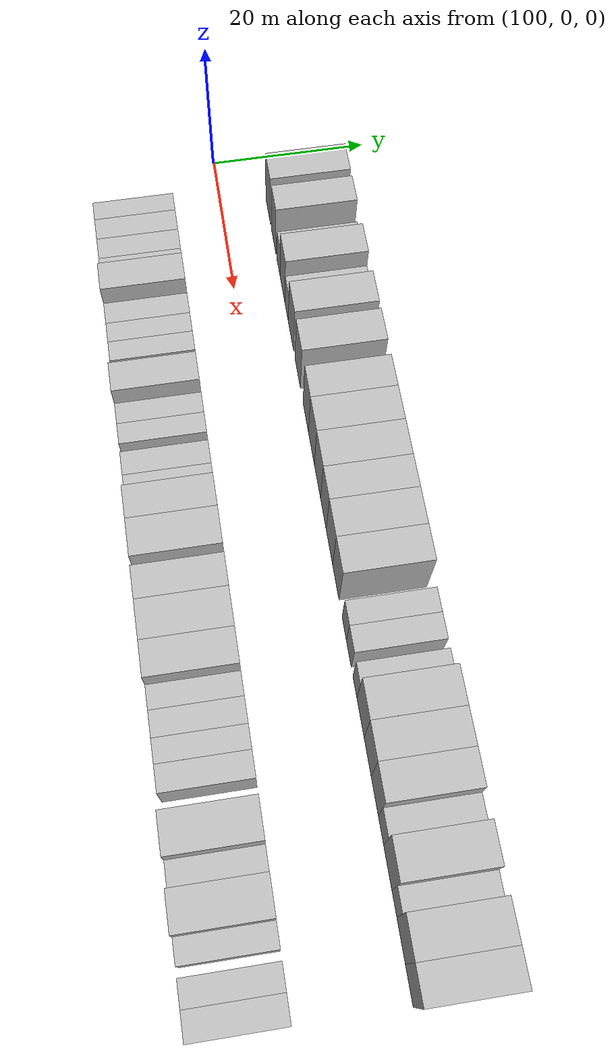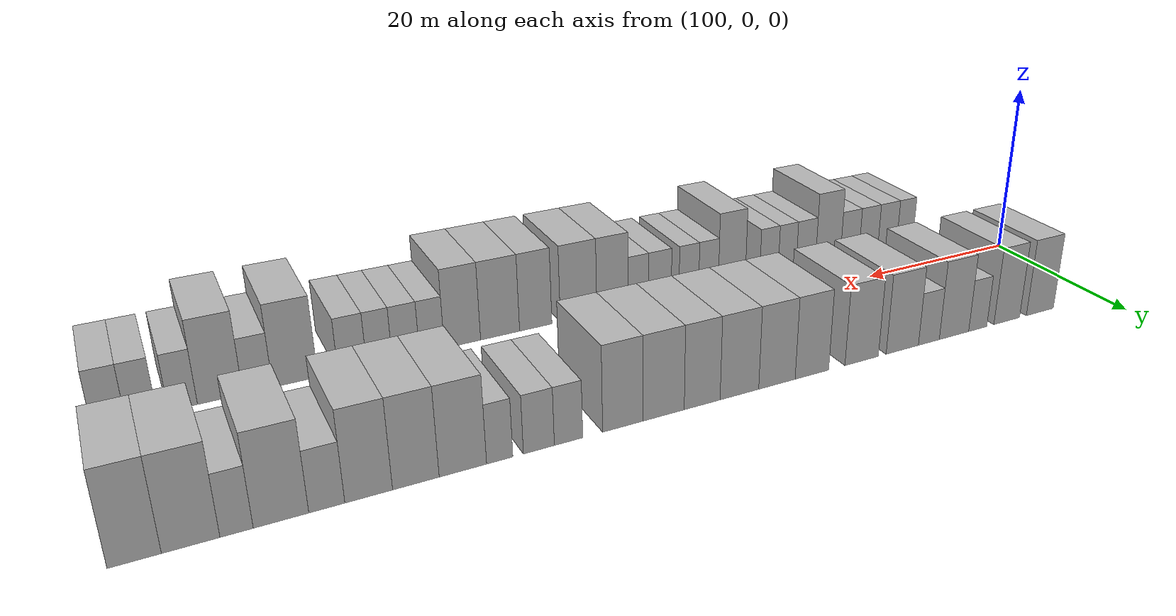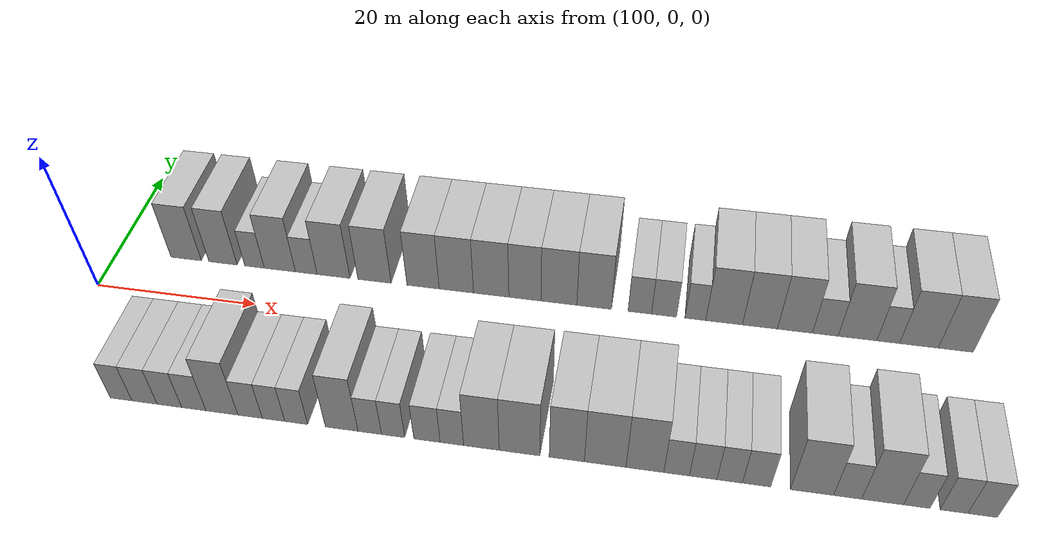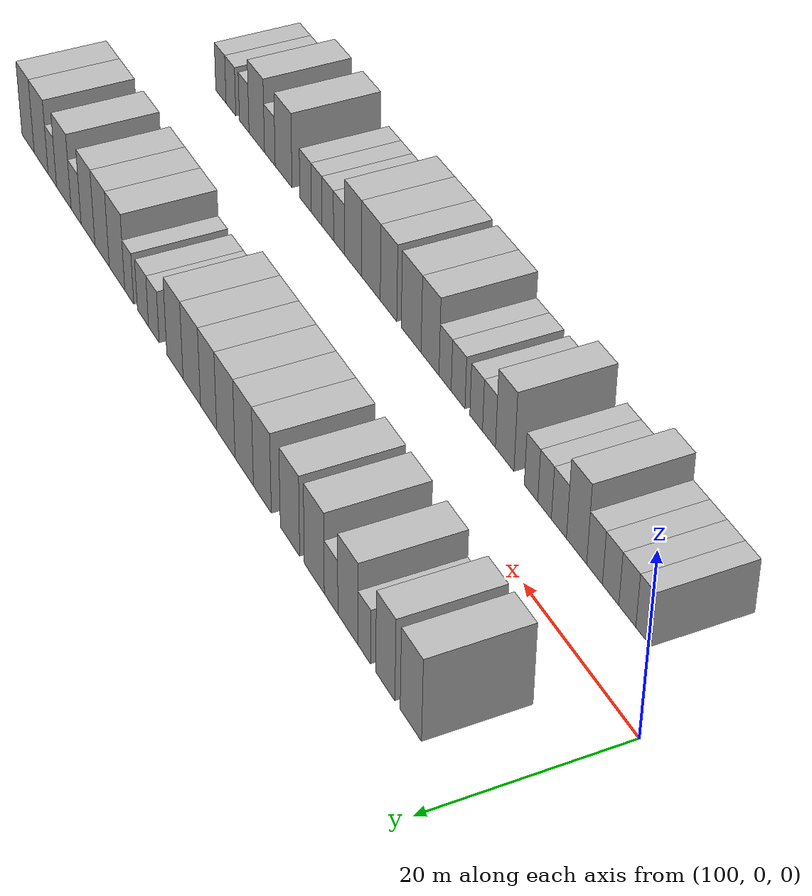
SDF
<sdf version="1.6">
 <world name="default">
  <model name="building_26">
   <static>1</static>
   <pose>108.9048 11.0000 0 0.000000 0.000000 1.570796</pose>
   <link name="link">
    <pose>0 0 4.50 0 0 0</pose>
    <collision name="collision"><geometry><box><size>10.0000 3.9780 9.0000</size></box></geometry></collision>
    <visual name="visual">
     <cast_shadows>0</cast_shadows>
     <geometry><box><size>10.0000 3.9780 9.0000</size></box></geometry>
     <material>
      <script>
       <uri>model://HANNAS_wall/materials/scripts</uri>
       <uri>model://HANNAS_wall/materials/textures</uri>
       <name>vrc/HANNAS_wall</name>
      </script>
     </material>
    </visual>
   </link>
  </model>
  <model name="building_27">
   <static>1</static>
   <pose>113.7349 11.0000 0 0.000000 0.000000 1.570796</pose>
   <link name="link">
    <pose>0 0 4.50 0 0 0</pose>
    <collision name="collision"><geometry><box><size>10.0000 3.6821 9.0000</size></box></geometry></collision>
    <visual name="visual">
     <cast_shadows>0</cast_shadows>
     <geometry><box><size>10.0000 3.6821 9.0000</size></box></geometry>
     <material>
      <script>
       <uri>model://HANNAS_wall/materials/scripts</uri>
       <uri>model://HANNAS_wall/materials/textures</uri>
       <name>vrc/HANNAS_wall</name>
      </script>
     </material>
    </visual>
   </link>
  </model>
  <model name="building_28">
   <static>1</static>
   <pose>117.8396 11.0000 0 0.000000 0.000000 1.570796</pose>
   <link name="link">
    <pose>0 0 3.00 0 0 0</pose>
    <collision name="collision"><geometry><box><size>10.0000 2.5272 6.0000</size></box></geometry></collision>
    <visual name="visual">
     <cast_shadows>0</cast_shadows>
     <geometry><box><size>10.0000 2.5272 6.0000</size></box></geometry>
     <material>
      <script>
       <uri>model://HANNAS_wall/materials/scripts</uri>
       <uri>model://HANNAS_wall/materials/textures</uri>
       <name>vrc/HANNAS_wall</name>
      </script>
     </material>
    </visual>
   </link>
  </model>
  <model name="building_29">
   <static>1</static>
   <pose>121.1098 11.0000 0 0.000000 0.000000 1.570796</pose>
   <link name="link">
    <pose>0 0 4.50 0 0 0</pose>
    <collision name="collision"><geometry><box><size>10.0000 4.0132 9.0000</size></box></geometry></collision>
    <visual name="visual">
     <cast_shadows>0</cast_shadows>
     <geometry><box><size>10.0000 4.0132 9.0000</size></box></geometry>
     <material>
      <script>
       <uri>model://HANNAS_wall/materials/scripts</uri>
       <uri>model://HANNAS_wall/materials/textures</uri>
       <name>vrc/HANNAS_wall</name>
      </script>
     </material>
    </visual>
   </link>
  </model>
  <model name="building_30">
   <static>1</static>
   <pose>124.5116 11.0000 0 0.000000 0.000000 1.570796</pose>
   <link name="link">
    <pose>0 0 3.00 0 0 0</pose>
    <collision name="collision"><geometry><box><size>10.0000 2.7904 6.0000</size></box></geometry></collision>
    <visual name="visual">
     <cast_shadows>0</cast_shadows>
     <geometry><box><size>10.0000 2.7904 6.0000</size></box></geometry>
     <material>
      <script>
       <uri>model://HANNAS_wall/materials/scripts</uri>
       <uri>model://HANNAS_wall/materials/textures</uri>
       <name>vrc/HANNAS_wall</name>
      </script>
     </material>
    </visual>
   </link>
  </model>
  <model name="building_31">
   <static>1</static>
   <pose>128.0067 11.0000 0 0.000000 0.000000 1.570796</pose>
   <link name="link">
    <pose>0 0 4.50 0 0 0</pose>
    <collision name="collision"><geometry><box><size>10.0000 4.1998 9.0000</size></box></geometry></collision>
    <visual name="visual">
     <cast_shadows>0</cast_shadows>
     <geometry><box><size>10.0000 4.1998 9.0000</size></box></geometry>
     <material>
      <script>
       <uri>model://HANNAS_wall/materials/scripts</uri>
       <uri>model://HANNAS_wall/materials/textures</uri>
       <name>vrc/HANNAS_wall</name>
      </script>
     </material>
    </visual>
   </link>
  </model>
  <model name="building_32">
   <static>1</static>
   <pose>133.2052 11.0000 0 0.000000 0.000000 1.570796</pose>
   <link name="link">
    <pose>0 0 4.50 0 0 0</pose>
    <collision name="collision"><geometry><box><size>10.0000 4.1973 9.0000</size></box></geometry></collision>
    <visual name="visual">
     <cast_shadows>0</cast_shadows>
     <geometry><box><size>10.0000 4.1973 9.0000</size></box></geometry>
     <material>
      <script>
       <uri>model://HANNAS_wall/materials/scripts</uri>
       <uri>model://HANNAS_wall/materials/textures</uri>
       <name>vrc/HANNAS_wall</name>
      </script>
     </material>
    </visual>
   </link>
  </model>
  <model name="building_33">
   <static>1</static>
   <pose>139.3201 11.0000 0 0.000000 0.000000 1.570796</pose>
   <link name="link">
    <pose>0 0 4.50 0 0 0</pose>
    <collision name="collision"><geometry><box><size>10.0000 4.0323 9.0000</size></box></geometry></collision>
    <visual name="visual">
     <cast_shadows>0</cast_shadows>
     <geometry><box><size>10.0000 4.0323 9.0000</size></box></geometry>
     <material>
      <script>
       <uri>model://HANNAS_wall/materials/scripts</uri>
       <uri>model://HANNAS_wall/materials/textures</uri>
       <name>vrc/HANNAS_wall</name>
      </script>
     </material>
    </visual>
   </link>
  </model>
  <model name="building_34">
   <static>1</static>
   <pose>143.4640 11.0000 0 0.000000 0.000000 1.570796</pose>
   <link name="link">
    <pose>0 0 4.50 0 0 0</pose>
    <collision name="collision"><geometry><box><size>10.0000 4.2556 9.0000</size></box></geometry></collision>
    <visual name="visual">
     <cast_shadows>0</cast_shadows>
     <geometry><box><size>10.0000 4.2556 9.0000</size></box></geometry>
     <material>
      <script>
       <uri>model://HANNAS_wall/materials/scripts</uri>
       <uri>model://HANNAS_wall/materials/textures</uri>
       <name>vrc/HANNAS_wall</name>
      </script>
     </material>
    </visual>
   </link>
  </model>
  <model name="building_35">
   <static>1</static>
   <pose>147.7761 11.0000 0 0.000000 0.000000 1.570796</pose>
   <link name="link">
    <pose>0 0 4.50 0 0 0</pose>
    <collision name="collision"><geometry><box><size>10.0000 4.3686 9.0000</size></box></geometry></collision>
    <visual name="visual">
     <cast_shadows>0</cast_shadows>
     <geometry><box><size>10.0000 4.3686 9.0000</size></box></geometry>
     <material>
      <script>
       <uri>model://HANNAS_wall/materials/scripts</uri>
       <uri>model://HANNAS_wall/materials/textures</uri>
       <name>vrc/HANNAS_wall</name>
      </script>
     </material>
    </visual>
   </link>
  </model>
  <model name="building_36">
   <static>1</static>
   <pose>151.9276 11.0000 0 0.000000 0.000000 1.570796</pose>
   <link name="link">
    <pose>0 0 4.50 0 0 0</pose>
    <collision name="collision"><geometry><box><size>10.0000 3.9345 9.0000</size></box></geometry></collision>
    <visual name="visual">
     <cast_shadows>0</cast_shadows>
     <geometry><box><size>10.0000 3.9345 9.0000</size></box></geometry>
     <material>
      <script>
       <uri>model://HANNAS_wall/materials/scripts</uri>
       <uri>model://HANNAS_wall/materials/textures</uri>
       <name>vrc/HANNAS_wall</name>
      </script>
     </material>
    </visual>
   </link>
  </model>
  <model name="building_37">
   <static>1</static>
   <pose>156.0718 11.0000 0 0.000000 0.000000 1.570796</pose>
   <link name="link">
    <pose>0 0 4.50 0 0 0</pose>
    <collision name="collision"><geometry><box><size>10.0000 4.3540 9.0000</size></box></geometry></collision>
    <visual name="visual">
     <cast_shadows>0</cast_shadows>
     <geometry><box><size>10.0000 4.3540 9.0000</size></box></geometry>
     <material>
      <script>
       <uri>model://HANNAS_wall/materials/scripts</uri>
       <uri>model://HANNAS_wall/materials/textures</uri>
       <name>vrc/HANNAS_wall</name>
      </script>
     </material>
    </visual>
   </link>
  </model>
  <model name="building_38">
   <static>1</static>
   <pose>160.3389 11.0000 0 0.000000 0.000000 1.570796</pose>
   <link name="link">
    <pose>0 0 4.50 0 0 0</pose>
    <collision name="collision"><geometry><box><size>10.0000 4.1802 9.0000</size></box></geometry></collision>
    <visual name="visual">
     <cast_shadows>0</cast_shadows>
     <geometry><box><size>10.0000 4.1802 9.0000</size></box></geometry>
     <material>
      <script>
       <uri>model://HANNAS_wall/materials/scripts</uri>
       <uri>model://HANNAS_wall/materials/textures</uri>
       <name>vrc/HANNAS_wall</name>
      </script>
     </material>
    </visual>
   </link>
  </model>
  <model name="building_39">
   <static>1</static>
   <pose>165.8257 11.0000 0 0.000000 0.000000 1.570796</pose>
   <link name="link">
    <pose>0 0 3.00 0 0 0</pose>
    <collision name="collision"><geometry><box><size>10.0000 2.7934 6.0000</size></box></geometry></collision>
    <visual name="visual">
     <cast_shadows>0</cast_shadows>
     <geometry><box><size>10.0000 2.7934 6.0000</size></box></geometry>
     <material>
      <script>
       <uri>model://HANNAS_wall/materials/scripts</uri>
       <uri>model://HANNAS_wall/materials/textures</uri>
       <name>vrc/HANNAS_wall</name>
      </script>
     </material>
    </visual>
   </link>
  </model>
  <model name="building_40">
   <static>1</static>
   <pose>168.7134 11.0000 0 0.000000 0.000000 1.570796</pose>
   <link name="link">
    <pose>0 0 3.00 0 0 0</pose>
    <collision name="collision"><geometry><box><size>10.0000 2.9819 6.0000</size></box></geometry></collision>
    <visual name="visual">
     <cast_shadows>0</cast_shadows>
     <geometry><box><size>10.0000 2.9819 6.0000</size></box></geometry>
     <material>
      <script>
       <uri>model://HANNAS_wall/materials/scripts</uri>
       <uri>model://HANNAS_wall/materials/textures</uri>
       <name>vrc/HANNAS_wall</name>
      </script>
     </material>
    </visual>
   </link>
  </model>
  <model name="building_41">
   <static>1</static>
   <pose>172.4298 11.0000 0 0.000000 0.000000 1.570796</pose>
   <link name="link">
    <pose>0 0 3.00 0 0 0</pose>
    <collision name="collision"><geometry><box><size>10.0000 2.4508 6.0000</size></box></geometry></collision>
    <visual name="visual">
     <cast_shadows>0</cast_shadows>
     <geometry><box><size>10.0000 2.4508 6.0000</size></box></geometry>
     <material>
      <script>
       <uri>model://HANNAS_wall/materials/scripts</uri>
       <uri>model://HANNAS_wall/materials/textures</uri>
       <name>vrc/HANNAS_wall</name>
      </script>
     </material>
    </visual>
   </link>
  </model>
  <model name="building_42">
   <static>1</static>
   <pose>175.8117 11.0000 0 0.000000 0.000000 1.570796</pose>
   <link name="link">
    <pose>0 0 4.50 0 0 0</pose>
    <collision name="collision"><geometry><box><size>10.0000 4.3130 9.0000</size></box></geometry></collision>
    <visual name="visual">
     <cast_shadows>0</cast_shadows>
     <geometry><box><size>10.0000 4.3130 9.0000</size></box></geometry>
     <material>
      <script>
       <uri>model://HANNAS_wall/materials/scripts</uri>
       <uri>model://HANNAS_wall/materials/textures</uri>
       <name>vrc/HANNAS_wall</name>
      </script>
     </material>
    </visual>
   </link>
  </model>
  <model name="building_43">
   <static>1</static>
   <pose>180.0138 11.0000 0 0.000000 0.000000 1.570796</pose>
   <link name="link">
    <pose>0 0 4.50 0 0 0</pose>
    <collision name="collision"><geometry><box><size>10.0000 4.0911 9.0000</size></box></geometry></collision>
    <visual name="visual">
     <cast_shadows>0</cast_shadows>
     <geometry><box><size>10.0000 4.0911 9.0000</size></box></geometry>
     <material>
      <script>
       <uri>model://HANNAS_wall/materials/scripts</uri>
       <uri>model://HANNAS_wall/materials/textures</uri>
       <name>vrc/HANNAS_wall</name>
      </script>
     </material>
    </visual>
   </link>
  </model>
  <model name="building_44">
   <static>1</static>
   <pose>184.0826 11.0000 0 0.000000 0.000000 1.570796</pose>
   <link name="link">
    <pose>0 0 4.50 0 0 0</pose>
    <collision name="collision"><geometry><box><size>10.0000 4.0466 9.0000</size></box></geometry></collision>
    <visual name="visual">
     <cast_shadows>0</cast_shadows>
     <geometry><box><size>10.0000 4.0466 9.0000</size></box></geometry>
     <material>
      <script>
       <uri>model://HANNAS_wall/materials/scripts</uri>
       <uri>model://HANNAS_wall/materials/textures</uri>
       <name>vrc/HANNAS_wall</name>
      </script>
     </material>
    </visual>
   </link>
  </model>
  <model name="building_45">
   <static>1</static>
   <pose>187.5892 11.0000 0 0.000000 0.000000 1.570796</pose>
   <link name="link">
    <pose>0 0 3.00 0 0 0</pose>
    <collision name="collision"><geometry><box><size>10.0000 2.9666 6.0000</size></box></geometry></collision>
    <visual name="visual">
     <cast_shadows>0</cast_shadows>
     <geometry><box><size>10.0000 2.9666 6.0000</size></box></geometry>
     <material>
      <script>
       <uri>model://HANNAS_wall/materials/scripts</uri>
       <uri>model://HANNAS_wall/materials/textures</uri>
       <name>vrc/HANNAS_wall</name>
      </script>
     </material>
    </visual>
   </link>
  </model>
  <model name="building_46">
   <static>1</static>
   <pose>191.2856 11.0000 0 0.000000 0.000000 1.570796</pose>
   <link name="link">
    <pose>0 0 4.50 0 0 0</pose>
    <collision name="collision"><geometry><box><size>10.0000 4.4262 9.0000</size></box></geometry></collision>
    <visual name="visual">
     <cast_shadows>0</cast_shadows>
     <geometry><box><size>10.0000 4.4262 9.0000</size></box></geometry>
     <material>
      <script>
       <uri>model://HANNAS_wall/materials/scripts</uri>
       <uri>model://HANNAS_wall/materials/textures</uri>
       <name>vrc/HANNAS_wall</name>
      </script>
     </material>
    </visual>
   </link>
  </model>
  <model name="building_47">
   <static>1</static>
   <pose>194.7853 11.0000 0 0.000000 0.000000 1.570796</pose>
   <link name="link">
    <pose>0 0 3.00 0 0 0</pose>
    <collision name="collision"><geometry><box><size>10.0000 2.5732 6.0000</size></box></geometry></collision>
    <visual name="visual">
     <cast_shadows>0</cast_shadows>
     <geometry><box><size>10.0000 2.5732 6.0000</size></box></geometry>
     <material>
      <script>
       <uri>model://HANNAS_wall/materials/scripts</uri>
       <uri>model://HANNAS_wall/materials/textures</uri>
       <name>vrc/HANNAS_wall</name>
      </script>
     </material>
    </visual>
   </link>
  </model>
  <model name="building_48">
   <static>1</static>
   <pose>198.2631 11.0000 0 0.000000 0.000000 1.570796</pose>
   <link name="link">
    <pose>0 0 4.50 0 0 0</pose>
    <collision name="collision"><geometry><box><size>10.0000 4.3825 9.0000</size></box></geometry></collision>
    <visual name="visual">
     <cast_shadows>0</cast_shadows>
     <geometry><box><size>10.0000 4.3825 9.0000</size></box></geometry>
     <material>
      <script>
       <uri>model://HANNAS_wall/materials/scripts</uri>
       <uri>model://HANNAS_wall/materials/textures</uri>
       <name>vrc/HANNAS_wall</name>
      </script>
     </material>
    </visual>
   </link>
  </model>
  <model name="building_49">
   <static>1</static>
   <pose>202.4168 11.0000 0 0.000000 0.000000 1.570796</pose>
   <link name="link">
    <pose>0 0 4.50 0 0 0</pose>
    <collision name="collision"><geometry><box><size>10.0000 3.9248 9.0000</size></box></geometry></collision>
    <visual name="visual">
     <cast_shadows>0</cast_shadows>
     <geometry><box><size>10.0000 3.9248 9.0000</size></box></geometry>
     <material>
      <script>
       <uri>model://HANNAS_wall/materials/scripts</uri>
       <uri>model://HANNAS_wall/materials/textures</uri>
       <name>vrc/HANNAS_wall</name>
      </script>
     </material>
    </visual>
   </link>
  </model>
  <model name="building_76">
   <static>1</static>
   <pose>110.1139 -11.0000 0 0.000000 0.000000 1.570796</pose>
   <link name="link">
    <pose>0 0 3.00 0 0 0</pose>
    <collision name="collision"><geometry><box><size>10.0000 2.5316 6.0000</size></box></geometry></collision>
    <visual name="visual">
     <cast_shadows>0</cast_shadows>
     <geometry><box><size>10.0000 2.5316 6.0000</size></box></geometry>
     <material>
      <script>
       <uri>model://HANNAS_wall/materials/scripts</uri>
       <uri>model://HANNAS_wall/materials/textures</uri>
       <name>vrc/HANNAS_wall</name>
      </script>
     </material>
    </visual>
   </link>
  </model>
  <model name="building_77">
   <static>1</static>
   <pose>112.8447 -11.0000 0 0.000000 0.000000 1.570796</pose>
   <link name="link">
    <pose>0 0 3.00 0 0 0</pose>
    <collision name="collision"><geometry><box><size>10.0000 2.9300 6.0000</size></box></geometry></collision>
    <visual name="visual">
     <cast_shadows>0</cast_shadows>
     <geometry><box><size>10.0000 2.9300 6.0000</size></box></geometry>
     <material>
      <script>
       <uri>model://HANNAS_wall/materials/scripts</uri>
       <uri>model://HANNAS_wall/materials/textures</uri>
       <name>vrc/HANNAS_wall</name>
      </script>
     </material>
    </visual>
   </link>
  </model>
  <model name="building_78">
   <static>1</static>
   <pose>115.7404 -11.0000 0 0.000000 0.000000 1.570796</pose>
   <link name="link">
    <pose>0 0 3.00 0 0 0</pose>
    <collision name="collision"><geometry><box><size>10.0000 2.8615 6.0000</size></box></geometry></collision>
    <visual name="visual">
     <cast_shadows>0</cast_shadows>
     <geometry><box><size>10.0000 2.8615 6.0000</size></box></geometry>
     <material>
      <script>
       <uri>model://HANNAS_wall/materials/scripts</uri>
       <uri>model://HANNAS_wall/materials/textures</uri>
       <name>vrc/HANNAS_wall</name>
      </script>
     </material>
    </visual>
   </link>
  </model>
  <model name="building_79">
   <static>1</static>
   <pose>118.5729 -11.0000 0 0.000000 0.000000 1.570796</pose>
   <link name="link">
    <pose>0 0 3.00 0 0 0</pose>
    <collision name="collision"><geometry><box><size>10.0000 2.8034 6.0000</size></box></geometry></collision>
    <visual name="visual">
     <cast_shadows>0</cast_shadows>
     <geometry><box><size>10.0000 2.8034 6.0000</size></box></geometry>
     <material>
      <script>
       <uri>model://HANNAS_wall/materials/scripts</uri>
       <uri>model://HANNAS_wall/materials/textures</uri>
       <name>vrc/HANNAS_wall</name>
      </script>
     </material>
    </visual>
   </link>
  </model>
  <model name="building_80">
   <static>1</static>
   <pose>121.8096 -11.0000 0 0.000000 0.000000 1.570796</pose>
   <link name="link">
    <pose>0 0 4.50 0 0 0</pose>
    <collision name="collision"><geometry><box><size>10.0000 3.6700 9.0000</size></box></geometry></collision>
    <visual name="visual">
     <cast_shadows>0</cast_shadows>
     <geometry><box><size>10.0000 3.6700 9.0000</size></box></geometry>
     <material>
      <script>
       <uri>model://HANNAS_wall/materials/scripts</uri>
       <uri>model://HANNAS_wall/materials/textures</uri>
       <name>vrc/HANNAS_wall</name>
      </script>
     </material>
    </visual>
   </link>
  </model>
  <model name="building_81">
   <static>1</static>
   <pose>125.0397 -11.0000 0 0.000000 0.000000 1.570796</pose>
   <link name="link">
    <pose>0 0 3.00 0 0 0</pose>
    <collision name="collision"><geometry><box><size>10.0000 2.7900 6.0000</size></box></geometry></collision>
    <visual name="visual">
     <cast_shadows>0</cast_shadows>
     <geometry><box><size>10.0000 2.7900 6.0000</size></box></geometry>
     <material>
      <script>
       <uri>model://HANNAS_wall/materials/scripts</uri>
       <uri>model://HANNAS_wall/materials/textures</uri>
       <name>vrc/HANNAS_wall</name>
      </script>
     </material>
    </visual>
   </link>
  </model>
  <model name="building_82">
   <static>1</static>
   <pose>127.7162 -11.0000 0 0.000000 0.000000 1.570796</pose>
   <link name="link">
    <pose>0 0 3.00 0 0 0</pose>
    <collision name="collision"><geometry><box><size>10.0000 2.5630 6.0000</size></box></geometry></collision>
    <visual name="visual">
     <cast_shadows>0</cast_shadows>
     <geometry><box><size>10.0000 2.5630 6.0000</size></box></geometry>
     <material>
      <script>
       <uri>model://HANNAS_wall/materials/scripts</uri>
       <uri>model://HANNAS_wall/materials/textures</uri>
       <name>vrc/HANNAS_wall</name>
      </script>
     </material>
    </visual>
   </link>
  </model>
  <model name="building_83">
   <static>1</static>
   <pose>130.2859 -11.0000 0 0.000000 0.000000 1.570796</pose>
   <link name="link">
    <pose>0 0 3.00 0 0 0</pose>
    <collision name="collision"><geometry><box><size>10.0000 2.5766 6.0000</size></box></geometry></collision>
    <visual name="visual">
     <cast_shadows>0</cast_shadows>
     <geometry><box><size>10.0000 2.5766 6.0000</size></box></geometry>
     <material>
      <script>
       <uri>model://HANNAS_wall/materials/scripts</uri>
       <uri>model://HANNAS_wall/materials/textures</uri>
       <name>vrc/HANNAS_wall</name>
      </script>
     </material>
    </visual>
   </link>
  </model>
  <model name="building_84">
   <static>1</static>
   <pose>135.4018 -11.0000 0 0.000000 0.000000 1.570796</pose>
   <link name="link">
    <pose>0 0 4.50 0 0 0</pose>
    <collision name="collision"><geometry><box><size>10.0000 3.6552 9.0000</size></box></geometry></collision>
    <visual name="visual">
     <cast_shadows>0</cast_shadows>
     <geometry><box><size>10.0000 3.6552 9.0000</size></box></geometry>
     <material>
      <script>
       <uri>model://HANNAS_wall/materials/scripts</uri>
       <uri>model://HANNAS_wall/materials/textures</uri>
       <name>vrc/HANNAS_wall</name>
      </script>
     </material>
    </visual>
   </link>
  </model>
  <model name="building_85">
   <static>1</static>
   <pose>138.5337 -11.0000 0 0.000000 0.000000 1.570796</pose>
   <link name="link">
    <pose>0 0 3.00 0 0 0</pose>
    <collision name="collision"><geometry><box><size>10.0000 2.6086 6.0000</size></box></geometry></collision>
    <visual name="visual">
     <cast_shadows>0</cast_shadows>
     <geometry><box><size>10.0000 2.6086 6.0000</size></box></geometry>
     <material>
      <script>
       <uri>model://HANNAS_wall/materials/scripts</uri>
       <uri>model://HANNAS_wall/materials/textures</uri>
       <name>vrc/HANNAS_wall</name>
      </script>
     </material>
    </visual>
   </link>
  </model>
  <model name="building_86">
   <static>1</static>
   <pose>141.1270 -11.0000 0 0.000000 0.000000 1.570796</pose>
   <link name="link">
    <pose>0 0 3.00 0 0 0</pose>
    <collision name="collision"><geometry><box><size>10.0000 2.5780 6.0000</size></box></geometry></collision>
    <visual name="visual">
     <cast_shadows>0</cast_shadows>
     <geometry><box><size>10.0000 2.5780 6.0000</size></box></geometry>
     <material>
      <script>
       <uri>model://HANNAS_wall/materials/scripts</uri>
       <uri>model://HANNAS_wall/materials/textures</uri>
       <name>vrc/HANNAS_wall</name>
      </script>
     </material>
    </visual>
   </link>
  </model>
  <model name="building_87">
   <static>1</static>
   <pose>144.8616 -11.0000 0 0.000000 0.000000 1.570796</pose>
   <link name="link">
    <pose>0 0 3.00 0 0 0</pose>
    <collision name="collision"><geometry><box><size>10.0000 2.8910 6.0000</size></box></geometry></collision>
    <visual name="visual">
     <cast_shadows>0</cast_shadows>
     <geometry><box><size>10.0000 2.8910 6.0000</size></box></geometry>
     <material>
      <script>
       <uri>model://HANNAS_wall/materials/scripts</uri>
       <uri>model://HANNAS_wall/materials/textures</uri>
       <name>vrc/HANNAS_wall</name>
      </script>
     </material>
    </visual>
   </link>
  </model>
  <model name="building_88">
   <static>1</static>
   <pose>147.5941 -11.0000 0 0.000000 0.000000 1.570796</pose>
   <link name="link">
    <pose>0 0 3.00 0 0 0</pose>
    <collision name="collision"><geometry><box><size>10.0000 2.5740 6.0000</size></box></geometry></collision>
    <visual name="visual">
     <cast_shadows>0</cast_shadows>
     <geometry><box><size>10.0000 2.5740 6.0000</size></box></geometry>
     <material>
      <script>
       <uri>model://HANNAS_wall/materials/scripts</uri>
       <uri>model://HANNAS_wall/materials/textures</uri>
       <name>vrc/HANNAS_wall</name>
      </script>
     </material>
    </visual>
   </link>
  </model>
  <model name="building_89">
   <static>1</static>
   <pose>150.8193 -11.0000 0 0.000000 0.000000 1.570796</pose>
   <link name="link">
    <pose>0 0 4.50 0 0 0</pose>
    <collision name="collision"><geometry><box><size>10.0000 3.8763 9.0000</size></box></geometry></collision>
    <visual name="visual">
     <cast_shadows>0</cast_shadows>
     <geometry><box><size>10.0000 3.8763 9.0000</size></box></geometry>
     <material>
      <script>
       <uri>model://HANNAS_wall/materials/scripts</uri>
       <uri>model://HANNAS_wall/materials/textures</uri>
       <name>vrc/HANNAS_wall</name>
      </script>
     </material>
    </visual>
   </link>
  </model>
  <model name="building_90">
   <static>1</static>
   <pose>154.9484 -11.0000 0 0.000000 0.000000 1.570796</pose>
   <link name="link">
    <pose>0 0 4.50 0 0 0</pose>
    <collision name="collision"><geometry><box><size>10.0000 4.3820 9.0000</size></box></geometry></collision>
    <visual name="visual">
     <cast_shadows>0</cast_shadows>
     <geometry><box><size>10.0000 4.3820 9.0000</size></box></geometry>
     <material>
      <script>
       <uri>model://HANNAS_wall/materials/scripts</uri>
       <uri>model://HANNAS_wall/materials/textures</uri>
       <name>vrc/HANNAS_wall</name>
      </script>
     </material>
    </visual>
   </link>
  </model>
  <model name="building_91">
   <static>1</static>
   <pose>160.0143 -11.0000 0 0.000000 0.000000 1.570796</pose>
   <link name="link">
    <pose>0 0 4.50 0 0 0</pose>
    <collision name="collision"><geometry><box><size>10.0000 3.7497 9.0000</size></box></geometry></collision>
    <visual name="visual">
     <cast_shadows>0</cast_shadows>
     <geometry><box><size>10.0000 3.7497 9.0000</size></box></geometry>
     <material>
      <script>
       <uri>model://HANNAS_wall/materials/scripts</uri>
       <uri>model://HANNAS_wall/materials/textures</uri>
       <name>vrc/HANNAS_wall</name>
      </script>
     </material>
    </visual>
   </link>
  </model>
  <model name="building_92">
   <static>1</static>
   <pose>164.0923 -11.0000 0 0.000000 0.000000 1.570796</pose>
   <link name="link">
    <pose>0 0 4.50 0 0 0</pose>
    <collision name="collision"><geometry><box><size>10.0000 4.4062 9.0000</size></box></geometry></collision>
    <visual name="visual">
     <cast_shadows>0</cast_shadows>
     <geometry><box><size>10.0000 4.4062 9.0000</size></box></geometry>
     <material>
      <script>
       <uri>model://HANNAS_wall/materials/scripts</uri>
       <uri>model://HANNAS_wall/materials/textures</uri>
       <name>vrc/HANNAS_wall</name>
      </script>
     </material>
    </visual>
   </link>
  </model>
  <model name="building_93">
   <static>1</static>
   <pose>168.2837 -11.0000 0 0.000000 0.000000 1.570796</pose>
   <link name="link">
    <pose>0 0 4.50 0 0 0</pose>
    <collision name="collision"><geometry><box><size>10.0000 3.9766 9.0000</size></box></geometry></collision>
    <visual name="visual">
     <cast_shadows>0</cast_shadows>
     <geometry><box><size>10.0000 3.9766 9.0000</size></box></geometry>
     <material>
      <script>
       <uri>model://HANNAS_wall/materials/scripts</uri>
       <uri>model://HANNAS_wall/materials/textures</uri>
       <name>vrc/HANNAS_wall</name>
      </script>
     </material>
    </visual>
   </link>
  </model>
  <model name="building_94">
   <static>1</static>
   <pose>171.6055 -11.0000 0 0.000000 0.000000 1.570796</pose>
   <link name="link">
    <pose>0 0 3.00 0 0 0</pose>
    <collision name="collision"><geometry><box><size>10.0000 2.6672 6.0000</size></box></geometry></collision>
    <visual name="visual">
     <cast_shadows>0</cast_shadows>
     <geometry><box><size>10.0000 2.6672 6.0000</size></box></geometry>
     <material>
      <script>
       <uri>model://HANNAS_wall/materials/scripts</uri>
       <uri>model://HANNAS_wall/materials/textures</uri>
       <name>vrc/HANNAS_wall</name>
      </script>
     </material>
    </visual>
   </link>
  </model>
  <model name="building_95">
   <static>1</static>
   <pose>174.3739 -11.0000 0 0.000000 0.000000 1.570796</pose>
   <link name="link">
    <pose>0 0 3.00 0 0 0</pose>
    <collision name="collision"><geometry><box><size>10.0000 2.8696 6.0000</size></box></geometry></collision>
    <visual name="visual">
     <cast_shadows>0</cast_shadows>
     <geometry><box><size>10.0000 2.8696 6.0000</size></box></geometry>
     <material>
      <script>
       <uri>model://HANNAS_wall/materials/scripts</uri>
       <uri>model://HANNAS_wall/materials/textures</uri>
       <name>vrc/HANNAS_wall</name>
      </script>
     </material>
    </visual>
   </link>
  </model>
  <model name="building_96">
   <static>1</static>
   <pose>177.1303 -11.0000 0 0.000000 0.000000 1.570796</pose>
   <link name="link">
    <pose>0 0 3.00 0 0 0</pose>
    <collision name="collision"><geometry><box><size>10.0000 2.6431 6.0000</size></box></geometry></collision>
    <visual name="visual">
     <cast_shadows>0</cast_shadows>
     <geometry><box><size>10.0000 2.6431 6.0000</size></box></geometry>
     <material>
      <script>
       <uri>model://HANNAS_wall/materials/scripts</uri>
       <uri>model://HANNAS_wall/materials/textures</uri>
       <name>vrc/HANNAS_wall</name>
      </script>
     </material>
    </visual>
   </link>
  </model>
  <model name="building_97">
   <static>1</static>
   <pose>179.9048 -11.0000 0 0.000000 0.000000 1.570796</pose>
   <link name="link">
    <pose>0 0 3.00 0 0 0</pose>
    <collision name="collision"><geometry><box><size>10.0000 2.9058 6.0000</size></box></geometry></collision>
    <visual name="visual">
     <cast_shadows>0</cast_shadows>
     <geometry><box><size>10.0000 2.9058 6.0000</size></box></geometry>
     <material>
      <script>
       <uri>model://HANNAS_wall/materials/scripts</uri>
       <uri>model://HANNAS_wall/materials/textures</uri>
       <name>vrc/HANNAS_wall</name>
      </script>
     </material>
    </visual>
   </link>
  </model>
  <model name="building_98">
   <static>1</static>
   <pose>185.5514 -11.0000 0 0.000000 0.000000 1.570796</pose>
   <link name="link">
    <pose>0 0 4.50 0 0 0</pose>
    <collision name="collision"><geometry><box><size>10.0000 4.3875 9.0000</size></box></geometry></collision>
    <visual name="visual">
     <cast_shadows>0</cast_shadows>
     <geometry><box><size>10.0000 4.3875 9.0000</size></box></geometry>
     <material>
      <script>
       <uri>model://HANNAS_wall/materials/scripts</uri>
       <uri>model://HANNAS_wall/materials/textures</uri>
       <name>vrc/HANNAS_wall</name>
      </script>
     </material>
    </visual>
   </link>
  </model>
  <model name="building_99">
   <static>1</static>
   <pose>189.1620 -11.0000 0 0.000000 0.000000 1.570796</pose>
   <link name="link">
    <pose>0 0 3.00 0 0 0</pose>
    <collision name="collision"><geometry><box><size>10.0000 2.8337 6.0000</size></box></geometry></collision>
    <visual name="visual">
     <cast_shadows>0</cast_shadows>
     <geometry><box><size>10.0000 2.8337 6.0000</size></box></geometry>
     <material>
      <script>
       <uri>model://HANNAS_wall/materials/scripts</uri>
       <uri>model://HANNAS_wall/materials/textures</uri>
       <name>vrc/HANNAS_wall</name>
      </script>
     </material>
    </visual>
   </link>
  </model>
  <model name="building_100">
   <static>1</static>
   <pose>192.6744 -11.0000 0 0.000000 0.000000 1.570796</pose>
   <link name="link">
    <pose>0 0 4.50 0 0 0</pose>
    <collision name="collision"><geometry><box><size>10.0000 4.1912 9.0000</size></box></geometry></collision>
    <visual name="visual">
     <cast_shadows>0</cast_shadows>
     <geometry><box><size>10.0000 4.1912 9.0000</size></box></geometry>
     <material>
      <script>
       <uri>model://HANNAS_wall/materials/scripts</uri>
       <uri>model://HANNAS_wall/materials/textures</uri>
       <name>vrc/HANNAS_wall</name>
      </script>
     </material>
    </visual>
   </link>
  </model>
  <model name="building_101">
   <static>1</static>
   <pose>196.0927 -11.0000 0 0.000000 0.000000 1.570796</pose>
   <link name="link">
    <pose>0 0 3.00 0 0 0</pose>
    <collision name="collision"><geometry><box><size>10.0000 2.6454 6.0000</size></box></geometry></collision>
    <visual name="visual">
     <cast_shadows>0</cast_shadows>
     <geometry><box><size>10.0000 2.6454 6.0000</size></box></geometry>
     <material>
      <script>
       <uri>model://HANNAS_wall/materials/scripts</uri>
       <uri>model://HANNAS_wall/materials/textures</uri>
       <name>vrc/HANNAS_wall</name>
      </script>
     </material>
    </visual>
   </link>
  </model>
  <model name="building_102">
   <static>1</static>
   <pose>199.7815 -11.0000 0 0.000000 0.000000 1.570796</pose>
   <link name="link">
    <pose>0 0 3.00 0 0 0</pose>
    <collision name="collision"><geometry><box><size>10.0000 2.7323 6.0000</size></box></geometry></collision>
    <visual name="visual">
     <cast_shadows>0</cast_shadows>
     <geometry><box><size>10.0000 2.7323 6.0000</size></box></geometry>
     <material>
      <script>
       <uri>model://HANNAS_wall/materials/scripts</uri>
       <uri>model://HANNAS_wall/materials/textures</uri>
       <name>vrc/HANNAS_wall</name>
      </script>
     </material>
    </visual>
   </link>
  </model>
  <model name="building_103">
   <static>1</static>
   <pose>202.6041 -11.0000 0 0.000000 0.000000 1.570796</pose>
   <link name="link">
    <pose>0 0 3.00 0 0 0</pose>
    <collision name="collision"><geometry><box><size>10.0000 2.9128 6.0000</size></box></geometry></collision>
    <visual name="visual">
     <cast_shadows>0</cast_shadows>
     <geometry><box><size>10.0000 2.9128 6.0000</size></box></geometry>
     <material>
      <script>
       <uri>model://HANNAS_wall/materials/scripts</uri>
       <uri>model://HANNAS_wall/materials/textures</uri>
       <name>vrc/HANNAS_wall</name>
      </script>
     </material>
    </visual>
   </link>
  </model>
 </world>
</sdf>
